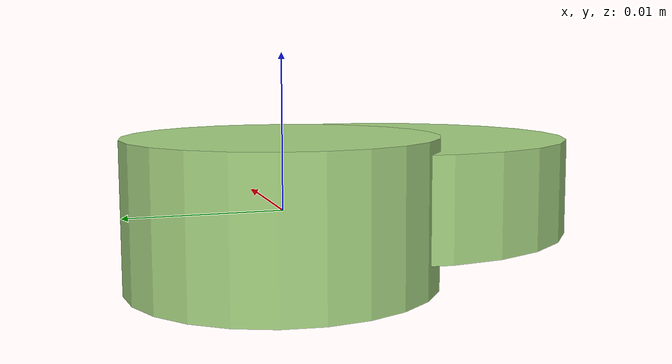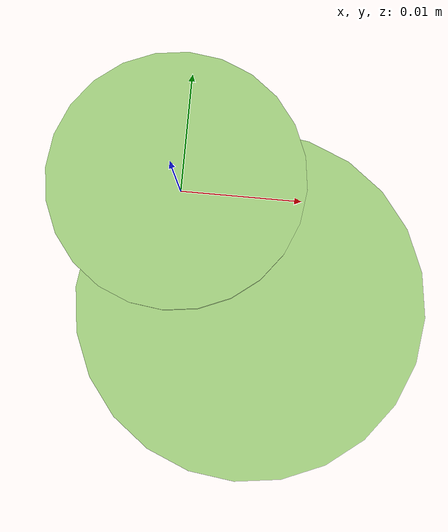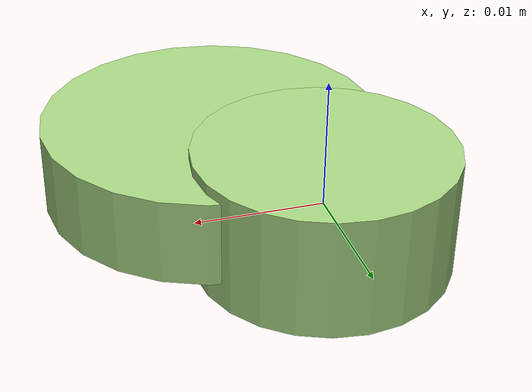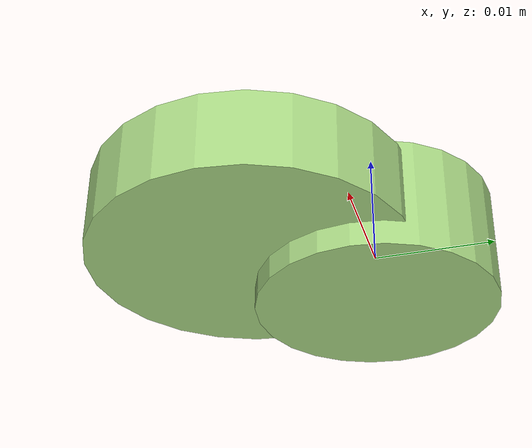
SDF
<?xml version="1.0" ?>
<!-- |    This document was autogenerated by xmacro from data/veggie_template/veggie_base.sdf.xacro  | -->
<!-- |    EDITING THIS FILE BY HAND IS NOT RECOMMENDED                                               | -->
<sdf version="1.8">
	<!-- Parameters -->
	<!-- Base -->
	<!-- Joint 0 -->
	<!-- Link 1 -->
	<!-- Joint 1 -->
	<!-- Link 2 -->
	<!-- Primitives -->
	<!-- All dimensions are half -->
	<!-- Object -->
	<model name="veggie">
		<!-- link0 -->
		<link name="link0">
			<inertial>
				<mass>0.0030179395011105414</mass>
				<inertia>
					<ixx>9.889001276921864e-08</ixx>
					<ixy>0</ixy>
					<ixz>0</ixz>
					<iyy>9.889001276921864e-08</iyy>
					<iyz>0</iyz>
					<izz>1.5208554295561205e-07</izz>
				</inertia>
			</inertial>
			<visual name="link0_visual">
				<pose>0 0 0 0 0 0</pose>
				<geometry>
					<cylinder>
						<radius>0.01003930617490926</radius>
						<length>0.009531302264136312</length>
					</cylinder>
				</geometry>
				<material>
					<ambient>0.659 0.839 0.514 1</ambient>
					<diffuse>0.659 0.839 0.514 1</diffuse>
					<specular>0 0 0 0</specular>
					<emissive>0 0 0 1</emissive>
				</material>
			</visual>
			<collision name="link0_collision">
				<pose>0 0 0 0 0 0 </pose>
				<geometry>
					<cylinder>
						<radius>0.01003930617490926</radius>
						<length>0.009531302264136312</length>
					</cylinder>
				</geometry>
			</collision>
		</link>
		<!-- link1 -->
		<joint name="joint0" type="fixed">
			<pose relative_to="link0">0.006460509146025329 -0.008846872641399668 0.0006068721701549193 0.0 0.0 0.0</pose>
			<parent>link0</parent>
			<child>link1</child>
		</joint>
		<link name="link1">
			<pose relative_to="joint0">0 0 0 0 0 0</pose>
			<inertial>
				<mass>0.0037370607744009717</mass>
				<inertia>
					<ixx>1.798374513335319e-07</ixx>
					<ixy>0</ixy>
					<ixz>0</ixz>
					<iyy>1.798374513335319e-07</iyy>
					<iyz>0</iyz>
					<izz>3.317094311637354e-07</izz>
				</inertia>
			</inertial>
			<visual name="link1_visual">
				<pose>0 0 0 0 0 0</pose>
				<geometry>
					<cylinder>
						<radius>0.013323822159109069</radius>
						<length>0.0067007222714240144</length>
					</cylinder>
				</geometry>
				<material>
					<ambient>0.659 0.839 0.514 1</ambient>
					<diffuse>0.659 0.839 0.514 1</diffuse>
					<specular>0 0 0 0</specular>
					<emissive>0 0 0 1</emissive>
				</material>
			</visual>
			<collision name="link1_collision">
				<pose>0 0 0 0 0 0 </pose>
				<geometry>
					<cylinder>
						<radius>0.013323822159109069</radius>
						<length>0.0067007222714240144</length>
					</cylinder>
				</geometry>
			</collision>
		</link>
		<!-- link2 -->
	</model>
</sdf>
